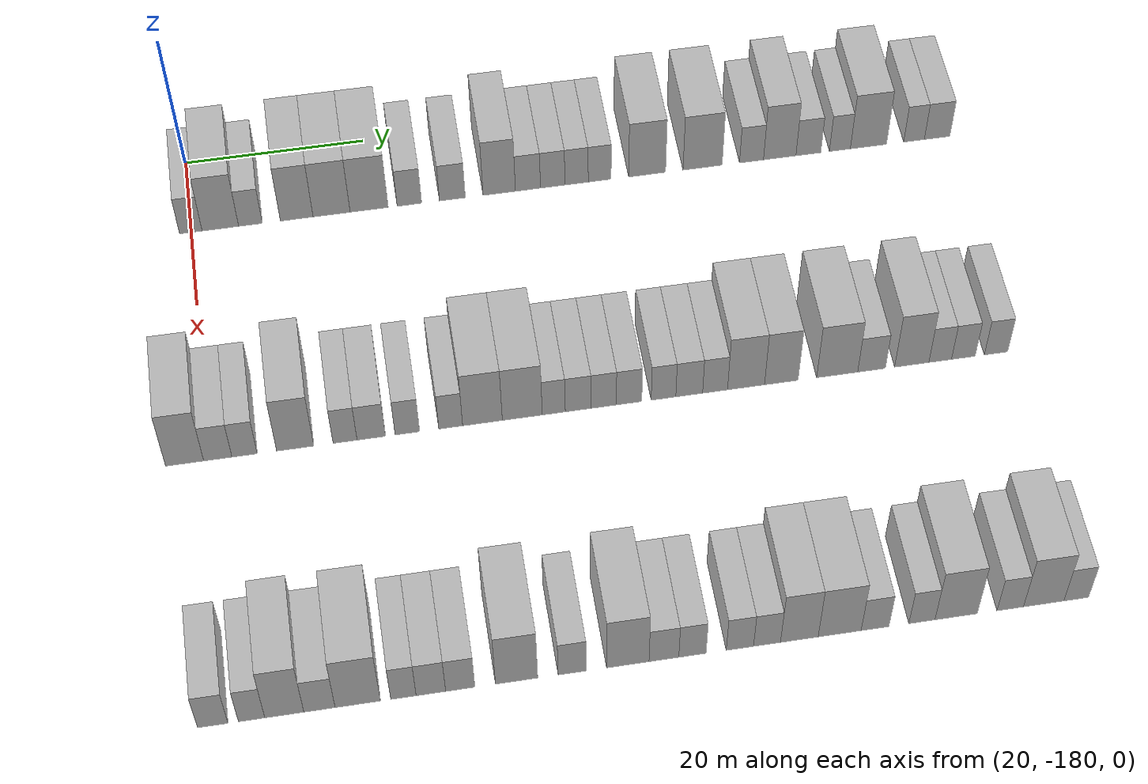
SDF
<sdf version="1.6">
 <world name="default">
  <model name="building_25">
   <static>1</static>
   <pose>25.0000 -180.0024 0 0.000000 0.000000 0.000000</pose>
   <link name="link">
    <pose>0 0 3.00 0 0 0</pose>
    <collision name="collision"><geometry><box><size>10.0000 2.4706 6.0000</size></box></geometry></collision>
    <visual name="visual">
     <cast_shadows>0</cast_shadows>
     <geometry><box><size>10.0000 2.4706 6.0000</size></box></geometry>
     <material>
      <script>
       <uri>model://HANNAS_wall/materials/scripts</uri>
       <uri>model://HANNAS_wall/materials/textures</uri>
       <name>vrc/HANNAS_wall</name>
      </script>
     </material>
    </visual>
   </link>
  </model>
  <model name="building_26">
   <static>1</static>
   <pose>25.0000 -176.7589 0 0.000000 0.000000 0.000000</pose>
   <link name="link">
    <pose>0 0 4.50 0 0 0</pose>
    <collision name="collision"><geometry><box><size>10.0000 4.0163 9.0000</size></box></geometry></collision>
    <visual name="visual">
     <cast_shadows>0</cast_shadows>
     <geometry><box><size>10.0000 4.0163 9.0000</size></box></geometry>
     <material>
      <script>
       <uri>model://HANNAS_wall/materials/scripts</uri>
       <uri>model://HANNAS_wall/materials/textures</uri>
       <name>vrc/HANNAS_wall</name>
      </script>
     </material>
    </visual>
   </link>
  </model>
  <model name="building_27">
   <static>1</static>
   <pose>25.0000 -173.4452 0 0.000000 0.000000 0.000000</pose>
   <link name="link">
    <pose>0 0 3.00 0 0 0</pose>
    <collision name="collision"><geometry><box><size>10.0000 2.6112 6.0000</size></box></geometry></collision>
    <visual name="visual">
     <cast_shadows>0</cast_shadows>
     <geometry><box><size>10.0000 2.6112 6.0000</size></box></geometry>
     <material>
      <script>
       <uri>model://HANNAS_wall/materials/scripts</uri>
       <uri>model://HANNAS_wall/materials/textures</uri>
       <name>vrc/HANNAS_wall</name>
      </script>
     </material>
    </visual>
   </link>
  </model>
  <model name="building_28">
   <static>1</static>
   <pose>25.0000 -168.3313 0 0.000000 0.000000 0.000000</pose>
   <link name="link">
    <pose>0 0 4.50 0 0 0</pose>
    <collision name="collision"><geometry><box><size>10.0000 3.6166 9.0000</size></box></geometry></collision>
    <visual name="visual">
     <cast_shadows>0</cast_shadows>
     <geometry><box><size>10.0000 3.6166 9.0000</size></box></geometry>
     <material>
      <script>
       <uri>model://HANNAS_wall/materials/scripts</uri>
       <uri>model://HANNAS_wall/materials/textures</uri>
       <name>vrc/HANNAS_wall</name>
      </script>
     </material>
    </visual>
   </link>
  </model>
  <model name="building_29">
   <static>1</static>
   <pose>25.0000 -164.4670 0 0.000000 0.000000 0.000000</pose>
   <link name="link">
    <pose>0 0 4.50 0 0 0</pose>
    <collision name="collision"><geometry><box><size>10.0000 4.1120 9.0000</size></box></geometry></collision>
    <visual name="visual">
     <cast_shadows>0</cast_shadows>
     <geometry><box><size>10.0000 4.1120 9.0000</size></box></geometry>
     <material>
      <script>
       <uri>model://HANNAS_wall/materials/scripts</uri>
       <uri>model://HANNAS_wall/materials/textures</uri>
       <name>vrc/HANNAS_wall</name>
      </script>
     </material>
    </visual>
   </link>
  </model>
  <model name="building_30">
   <static>1</static>
   <pose>25.0000 -160.2946 0 0.000000 0.000000 0.000000</pose>
   <link name="link">
    <pose>0 0 4.50 0 0 0</pose>
    <collision name="collision"><geometry><box><size>10.0000 4.2327 9.0000</size></box></geometry></collision>
    <visual name="visual">
     <cast_shadows>0</cast_shadows>
     <geometry><box><size>10.0000 4.2327 9.0000</size></box></geometry>
     <material>
      <script>
       <uri>model://HANNAS_wall/materials/scripts</uri>
       <uri>model://HANNAS_wall/materials/textures</uri>
       <name>vrc/HANNAS_wall</name>
      </script>
     </material>
    </visual>
   </link>
  </model>
  <model name="building_31">
   <static>1</static>
   <pose>25.0000 -155.8138 0 0.000000 0.000000 0.000000</pose>
   <link name="link">
    <pose>0 0 3.00 0 0 0</pose>
    <collision name="collision"><geometry><box><size>10.0000 2.7290 6.0000</size></box></geometry></collision>
    <visual name="visual">
     <cast_shadows>0</cast_shadows>
     <geometry><box><size>10.0000 2.7290 6.0000</size></box></geometry>
     <material>
      <script>
       <uri>model://HANNAS_wall/materials/scripts</uri>
       <uri>model://HANNAS_wall/materials/textures</uri>
       <name>vrc/HANNAS_wall</name>
      </script>
     </material>
    </visual>
   </link>
  </model>
  <model name="building_32">
   <static>1</static>
   <pose>25.0000 -151.0046 0 0.000000 0.000000 0.000000</pose>
   <link name="link">
    <pose>0 0 3.00 0 0 0</pose>
    <collision name="collision"><geometry><box><size>10.0000 2.8893 6.0000</size></box></geometry></collision>
    <visual name="visual">
     <cast_shadows>0</cast_shadows>
     <geometry><box><size>10.0000 2.8893 6.0000</size></box></geometry>
     <material>
      <script>
       <uri>model://HANNAS_wall/materials/scripts</uri>
       <uri>model://HANNAS_wall/materials/textures</uri>
       <name>vrc/HANNAS_wall</name>
      </script>
     </material>
    </visual>
   </link>
  </model>
  <model name="building_33">
   <static>1</static>
   <pose>25.0000 -145.7402 0 0.000000 0.000000 0.000000</pose>
   <link name="link">
    <pose>0 0 4.50 0 0 0</pose>
    <collision name="collision"><geometry><box><size>10.0000 3.6397 9.0000</size></box></geometry></collision>
    <visual name="visual">
     <cast_shadows>0</cast_shadows>
     <geometry><box><size>10.0000 3.6397 9.0000</size></box></geometry>
     <material>
      <script>
       <uri>model://HANNAS_wall/materials/scripts</uri>
       <uri>model://HANNAS_wall/materials/textures</uri>
       <name>vrc/HANNAS_wall</name>
      </script>
     </material>
    </visual>
   </link>
  </model>
  <model name="building_34">
   <static>1</static>
   <pose>25.0000 -142.5089 0 0.000000 0.000000 0.000000</pose>
   <link name="link">
    <pose>0 0 3.00 0 0 0</pose>
    <collision name="collision"><geometry><box><size>10.0000 2.8229 6.0000</size></box></geometry></collision>
    <visual name="visual">
     <cast_shadows>0</cast_shadows>
     <geometry><box><size>10.0000 2.8229 6.0000</size></box></geometry>
     <material>
      <script>
       <uri>model://HANNAS_wall/materials/scripts</uri>
       <uri>model://HANNAS_wall/materials/textures</uri>
       <name>vrc/HANNAS_wall</name>
      </script>
     </material>
    </visual>
   </link>
  </model>
  <model name="building_35">
   <static>1</static>
   <pose>25.0000 -139.7180 0 0.000000 0.000000 0.000000</pose>
   <link name="link">
    <pose>0 0 3.00 0 0 0</pose>
    <collision name="collision"><geometry><box><size>10.0000 2.7589 6.0000</size></box></geometry></collision>
    <visual name="visual">
     <cast_shadows>0</cast_shadows>
     <geometry><box><size>10.0000 2.7589 6.0000</size></box></geometry>
     <material>
      <script>
       <uri>model://HANNAS_wall/materials/scripts</uri>
       <uri>model://HANNAS_wall/materials/textures</uri>
       <name>vrc/HANNAS_wall</name>
      </script>
     </material>
    </visual>
   </link>
  </model>
  <model name="building_36">
   <static>1</static>
   <pose>25.0000 -137.0190 0 0.000000 0.000000 0.000000</pose>
   <link name="link">
    <pose>0 0 3.00 0 0 0</pose>
    <collision name="collision"><geometry><box><size>10.0000 2.6390 6.0000</size></box></geometry></collision>
    <visual name="visual">
     <cast_shadows>0</cast_shadows>
     <geometry><box><size>10.0000 2.6390 6.0000</size></box></geometry>
     <material>
      <script>
       <uri>model://HANNAS_wall/materials/scripts</uri>
       <uri>model://HANNAS_wall/materials/textures</uri>
       <name>vrc/HANNAS_wall</name>
      </script>
     </material>
    </visual>
   </link>
  </model>
  <model name="building_37">
   <static>1</static>
   <pose>25.0000 -134.4072 0 0.000000 0.000000 0.000000</pose>
   <link name="link">
    <pose>0 0 3.00 0 0 0</pose>
    <collision name="collision"><geometry><box><size>10.0000 2.5846 6.0000</size></box></geometry></collision>
    <visual name="visual">
     <cast_shadows>0</cast_shadows>
     <geometry><box><size>10.0000 2.5846 6.0000</size></box></geometry>
     <material>
      <script>
       <uri>model://HANNAS_wall/materials/scripts</uri>
       <uri>model://HANNAS_wall/materials/textures</uri>
       <name>vrc/HANNAS_wall</name>
      </script>
     </material>
    </visual>
   </link>
  </model>
  <model name="building_38">
   <static>1</static>
   <pose>25.0000 -129.0201 0 0.000000 0.000000 0.000000</pose>
   <link name="link">
    <pose>0 0 4.50 0 0 0</pose>
    <collision name="collision"><geometry><box><size>10.0000 4.1896 9.0000</size></box></geometry></collision>
    <visual name="visual">
     <cast_shadows>0</cast_shadows>
     <geometry><box><size>10.0000 4.1896 9.0000</size></box></geometry>
     <material>
      <script>
       <uri>model://HANNAS_wall/materials/scripts</uri>
       <uri>model://HANNAS_wall/materials/textures</uri>
       <name>vrc/HANNAS_wall</name>
      </script>
     </material>
    </visual>
   </link>
  </model>
  <model name="building_39">
   <static>1</static>
   <pose>25.0000 -122.6942 0 0.000000 0.000000 0.000000</pose>
   <link name="link">
    <pose>0 0 4.50 0 0 0</pose>
    <collision name="collision"><geometry><box><size>10.0000 4.4624 9.0000</size></box></geometry></collision>
    <visual name="visual">
     <cast_shadows>0</cast_shadows>
     <geometry><box><size>10.0000 4.4624 9.0000</size></box></geometry>
     <material>
      <script>
       <uri>model://HANNAS_wall/materials/scripts</uri>
       <uri>model://HANNAS_wall/materials/textures</uri>
       <name>vrc/HANNAS_wall</name>
      </script>
     </material>
    </visual>
   </link>
  </model>
  <model name="building_40">
   <static>1</static>
   <pose>25.0000 -117.0867 0 0.000000 0.000000 0.000000</pose>
   <link name="link">
    <pose>0 0 3.00 0 0 0</pose>
    <collision name="collision"><geometry><box><size>10.0000 2.7526 6.0000</size></box></geometry></collision>
    <visual name="visual">
     <cast_shadows>0</cast_shadows>
     <geometry><box><size>10.0000 2.7526 6.0000</size></box></geometry>
     <material>
      <script>
       <uri>model://HANNAS_wall/materials/scripts</uri>
       <uri>model://HANNAS_wall/materials/textures</uri>
       <name>vrc/HANNAS_wall</name>
      </script>
     </material>
    </visual>
   </link>
  </model>
  <model name="building_41">
   <static>1</static>
   <pose>25.0000 -113.8457 0 0.000000 0.000000 0.000000</pose>
   <link name="link">
    <pose>0 0 4.50 0 0 0</pose>
    <collision name="collision"><geometry><box><size>10.0000 3.7295 9.0000</size></box></geometry></collision>
    <visual name="visual">
     <cast_shadows>0</cast_shadows>
     <geometry><box><size>10.0000 3.7295 9.0000</size></box></geometry>
     <material>
      <script>
       <uri>model://HANNAS_wall/materials/scripts</uri>
       <uri>model://HANNAS_wall/materials/textures</uri>
       <name>vrc/HANNAS_wall</name>
      </script>
     </material>
    </visual>
   </link>
  </model>
  <model name="building_42">
   <static>1</static>
   <pose>25.0000 -110.5512 0 0.000000 0.000000 0.000000</pose>
   <link name="link">
    <pose>0 0 3.00 0 0 0</pose>
    <collision name="collision"><geometry><box><size>10.0000 2.8595 6.0000</size></box></geometry></collision>
    <visual name="visual">
     <cast_shadows>0</cast_shadows>
     <geometry><box><size>10.0000 2.8595 6.0000</size></box></geometry>
     <material>
      <script>
       <uri>model://HANNAS_wall/materials/scripts</uri>
       <uri>model://HANNAS_wall/materials/textures</uri>
       <name>vrc/HANNAS_wall</name>
      </script>
     </material>
    </visual>
   </link>
  </model>
  <model name="building_43">
   <static>1</static>
   <pose>25.0000 -106.9096 0 0.000000 0.000000 0.000000</pose>
   <link name="link">
    <pose>0 0 3.00 0 0 0</pose>
    <collision name="collision"><geometry><box><size>10.0000 2.4235 6.0000</size></box></geometry></collision>
    <visual name="visual">
     <cast_shadows>0</cast_shadows>
     <geometry><box><size>10.0000 2.4235 6.0000</size></box></geometry>
     <material>
      <script>
       <uri>model://HANNAS_wall/materials/scripts</uri>
       <uri>model://HANNAS_wall/materials/textures</uri>
       <name>vrc/HANNAS_wall</name>
      </script>
     </material>
    </visual>
   </link>
  </model>
  <model name="building_44">
   <static>1</static>
   <pose>25.0000 -103.6052 0 0.000000 0.000000 0.000000</pose>
   <link name="link">
    <pose>0 0 4.50 0 0 0</pose>
    <collision name="collision"><geometry><box><size>10.0000 4.1853 9.0000</size></box></geometry></collision>
    <visual name="visual">
     <cast_shadows>0</cast_shadows>
     <geometry><box><size>10.0000 4.1853 9.0000</size></box></geometry>
     <material>
      <script>
       <uri>model://HANNAS_wall/materials/scripts</uri>
       <uri>model://HANNAS_wall/materials/textures</uri>
       <name>vrc/HANNAS_wall</name>
      </script>
     </material>
    </visual>
   </link>
  </model>
  <model name="building_45">
   <static>1</static>
   <pose>25.0000 -98.3105 0 0.000000 0.000000 0.000000</pose>
   <link name="link">
    <pose>0 0 3.00 0 0 0</pose>
    <collision name="collision"><geometry><box><size>10.0000 2.4042 6.0000</size></box></geometry></collision>
    <visual name="visual">
     <cast_shadows>0</cast_shadows>
     <geometry><box><size>10.0000 2.4042 6.0000</size></box></geometry>
     <material>
      <script>
       <uri>model://HANNAS_wall/materials/scripts</uri>
       <uri>model://HANNAS_wall/materials/textures</uri>
       <name>vrc/HANNAS_wall</name>
      </script>
     </material>
    </visual>
   </link>
  </model>
  <model name="building_46">
   <static>1</static>
   <pose>25.0000 -95.6252 0 0.000000 0.000000 0.000000</pose>
   <link name="link">
    <pose>0 0 3.00 0 0 0</pose>
    <collision name="collision"><geometry><box><size>10.0000 2.9663 6.0000</size></box></geometry></collision>
    <visual name="visual">
     <cast_shadows>0</cast_shadows>
     <geometry><box><size>10.0000 2.9663 6.0000</size></box></geometry>
     <material>
      <script>
       <uri>model://HANNAS_wall/materials/scripts</uri>
       <uri>model://HANNAS_wall/materials/textures</uri>
       <name>vrc/HANNAS_wall</name>
      </script>
     </material>
    </visual>
   </link>
  </model>
  <model name="building_163">
   <static>1</static>
   <pose>55.0000 -182.4453 0 0.000000 0.000000 0.000000</pose>
   <link name="link">
    <pose>0 0 4.50 0 0 0</pose>
    <collision name="collision"><geometry><box><size>10.0000 3.8979 9.0000</size></box></geometry></collision>
    <visual name="visual">
     <cast_shadows>0</cast_shadows>
     <geometry><box><size>10.0000 3.8979 9.0000</size></box></geometry>
     <material>
      <script>
       <uri>model://HANNAS_wall/materials/scripts</uri>
       <uri>model://HANNAS_wall/materials/textures</uri>
       <name>vrc/HANNAS_wall</name>
      </script>
     </material>
    </visual>
   </link>
  </model>
  <model name="building_164">
   <static>1</static>
   <pose>55.0000 -179.0479 0 0.000000 0.000000 0.000000</pose>
   <link name="link">
    <pose>0 0 3.00 0 0 0</pose>
    <collision name="collision"><geometry><box><size>10.0000 2.8968 6.0000</size></box></geometry></collision>
    <visual name="visual">
     <cast_shadows>0</cast_shadows>
     <geometry><box><size>10.0000 2.8968 6.0000</size></box></geometry>
     <material>
      <script>
       <uri>model://HANNAS_wall/materials/scripts</uri>
       <uri>model://HANNAS_wall/materials/textures</uri>
       <name>vrc/HANNAS_wall</name>
      </script>
     </material>
    </visual>
   </link>
  </model>
  <model name="building_165">
   <static>1</static>
   <pose>55.0000 -176.2980 0 0.000000 0.000000 0.000000</pose>
   <link name="link">
    <pose>0 0 3.00 0 0 0</pose>
    <collision name="collision"><geometry><box><size>10.0000 2.6032 6.0000</size></box></geometry></collision>
    <visual name="visual">
     <cast_shadows>0</cast_shadows>
     <geometry><box><size>10.0000 2.6032 6.0000</size></box></geometry>
     <material>
      <script>
       <uri>model://HANNAS_wall/materials/scripts</uri>
       <uri>model://HANNAS_wall/materials/textures</uri>
       <name>vrc/HANNAS_wall</name>
      </script>
     </material>
    </visual>
   </link>
  </model>
  <model name="building_166">
   <static>1</static>
   <pose>55.0000 -171.0802 0 0.000000 0.000000 0.000000</pose>
   <link name="link">
    <pose>0 0 4.50 0 0 0</pose>
    <collision name="collision"><geometry><box><size>10.0000 3.8323 9.0000</size></box></geometry></collision>
    <visual name="visual">
     <cast_shadows>0</cast_shadows>
     <geometry><box><size>10.0000 3.8323 9.0000</size></box></geometry>
     <material>
      <script>
       <uri>model://HANNAS_wall/materials/scripts</uri>
       <uri>model://HANNAS_wall/materials/textures</uri>
       <name>vrc/HANNAS_wall</name>
      </script>
     </material>
    </visual>
   </link>
  </model>
  <model name="building_167">
   <static>1</static>
   <pose>55.0000 -165.9224 0 0.000000 0.000000 0.000000</pose>
   <link name="link">
    <pose>0 0 3.00 0 0 0</pose>
    <collision name="collision"><geometry><box><size>10.0000 2.4832 6.0000</size></box></geometry></collision>
    <visual name="visual">
     <cast_shadows>0</cast_shadows>
     <geometry><box><size>10.0000 2.4832 6.0000</size></box></geometry>
     <material>
      <script>
       <uri>model://HANNAS_wall/materials/scripts</uri>
       <uri>model://HANNAS_wall/materials/textures</uri>
       <name>vrc/HANNAS_wall</name>
      </script>
     </material>
    </visual>
   </link>
  </model>
  <model name="building_168">
   <static>1</static>
   <pose>55.0000 -163.2024 0 0.000000 0.000000 0.000000</pose>
   <link name="link">
    <pose>0 0 3.00 0 0 0</pose>
    <collision name="collision"><geometry><box><size>10.0000 2.9569 6.0000</size></box></geometry></collision>
    <visual name="visual">
     <cast_shadows>0</cast_shadows>
     <geometry><box><size>10.0000 2.9569 6.0000</size></box></geometry>
     <material>
      <script>
       <uri>model://HANNAS_wall/materials/scripts</uri>
       <uri>model://HANNAS_wall/materials/textures</uri>
       <name>vrc/HANNAS_wall</name>
      </script>
     </material>
    </visual>
   </link>
  </model>
  <model name="building_169">
   <static>1</static>
   <pose>55.0000 -159.4492 0 0.000000 0.000000 0.000000</pose>
   <link name="link">
    <pose>0 0 3.00 0 0 0</pose>
    <collision name="collision"><geometry><box><size>10.0000 2.5495 6.0000</size></box></geometry></collision>
    <visual name="visual">
     <cast_shadows>0</cast_shadows>
     <geometry><box><size>10.0000 2.5495 6.0000</size></box></geometry>
     <material>
      <script>
       <uri>model://HANNAS_wall/materials/scripts</uri>
       <uri>model://HANNAS_wall/materials/textures</uri>
       <name>vrc/HANNAS_wall</name>
      </script>
     </material>
    </visual>
   </link>
  </model>
  <model name="building_170">
   <static>1</static>
   <pose>55.0000 -154.9286 0 0.000000 0.000000 0.000000</pose>
   <link name="link">
    <pose>0 0 3.00 0 0 0</pose>
    <collision name="collision"><geometry><box><size>10.0000 2.4918 6.0000</size></box></geometry></collision>
    <visual name="visual">
     <cast_shadows>0</cast_shadows>
     <geometry><box><size>10.0000 2.4918 6.0000</size></box></geometry>
     <material>
      <script>
       <uri>model://HANNAS_wall/materials/scripts</uri>
       <uri>model://HANNAS_wall/materials/textures</uri>
       <name>vrc/HANNAS_wall</name>
      </script>
     </material>
    </visual>
   </link>
  </model>
  <model name="building_171">
   <static>1</static>
   <pose>55.0000 -151.6061 0 0.000000 0.000000 0.000000</pose>
   <link name="link">
    <pose>0 0 4.50 0 0 0</pose>
    <collision name="collision"><geometry><box><size>10.0000 4.1533 9.0000</size></box></geometry></collision>
    <visual name="visual">
     <cast_shadows>0</cast_shadows>
     <geometry><box><size>10.0000 4.1533 9.0000</size></box></geometry>
     <material>
      <script>
       <uri>model://HANNAS_wall/materials/scripts</uri>
       <uri>model://HANNAS_wall/materials/textures</uri>
       <name>vrc/HANNAS_wall</name>
      </script>
     </material>
    </visual>
   </link>
  </model>
  <model name="building_172">
   <static>1</static>
   <pose>55.0000 -147.4324 0 0.000000 0.000000 0.000000</pose>
   <link name="link">
    <pose>0 0 4.50 0 0 0</pose>
    <collision name="collision"><geometry><box><size>10.0000 4.1940 9.0000</size></box></geometry></collision>
    <visual name="visual">
     <cast_shadows>0</cast_shadows>
     <geometry><box><size>10.0000 4.1940 9.0000</size></box></geometry>
     <material>
      <script>
       <uri>model://HANNAS_wall/materials/scripts</uri>
       <uri>model://HANNAS_wall/materials/textures</uri>
       <name>vrc/HANNAS_wall</name>
      </script>
     </material>
    </visual>
   </link>
  </model>
  <model name="building_173">
   <static>1</static>
   <pose>55.0000 -144.1195 0 0.000000 0.000000 0.000000</pose>
   <link name="link">
    <pose>0 0 3.00 0 0 0</pose>
    <collision name="collision"><geometry><box><size>10.0000 2.4318 6.0000</size></box></geometry></collision>
    <visual name="visual">
     <cast_shadows>0</cast_shadows>
     <geometry><box><size>10.0000 2.4318 6.0000</size></box></geometry>
     <material>
      <script>
       <uri>model://HANNAS_wall/materials/scripts</uri>
       <uri>model://HANNAS_wall/materials/textures</uri>
       <name>vrc/HANNAS_wall</name>
      </script>
     </material>
    </visual>
   </link>
  </model>
  <model name="building_174">
   <static>1</static>
   <pose>55.0000 -141.5401 0 0.000000 0.000000 0.000000</pose>
   <link name="link">
    <pose>0 0 3.00 0 0 0</pose>
    <collision name="collision"><geometry><box><size>10.0000 2.7270 6.0000</size></box></geometry></collision>
    <visual name="visual">
     <cast_shadows>0</cast_shadows>
     <geometry><box><size>10.0000 2.7270 6.0000</size></box></geometry>
     <material>
      <script>
       <uri>model://HANNAS_wall/materials/scripts</uri>
       <uri>model://HANNAS_wall/materials/textures</uri>
       <name>vrc/HANNAS_wall</name>
      </script>
     </material>
    </visual>
   </link>
  </model>
  <model name="building_175">
   <static>1</static>
   <pose>55.0000 -138.8401 0 0.000000 0.000000 0.000000</pose>
   <link name="link">
    <pose>0 0 3.00 0 0 0</pose>
    <collision name="collision"><geometry><box><size>10.0000 2.6731 6.0000</size></box></geometry></collision>
    <visual name="visual">
     <cast_shadows>0</cast_shadows>
     <geometry><box><size>10.0000 2.6731 6.0000</size></box></geometry>
     <material>
      <script>
       <uri>model://HANNAS_wall/materials/scripts</uri>
       <uri>model://HANNAS_wall/materials/textures</uri>
       <name>vrc/HANNAS_wall</name>
      </script>
     </material>
    </visual>
   </link>
  </model>
  <model name="building_176">
   <static>1</static>
   <pose>55.0000 -136.1611 0 0.000000 0.000000 0.000000</pose>
   <link name="link">
    <pose>0 0 3.00 0 0 0</pose>
    <collision name="collision"><geometry><box><size>10.0000 2.6848 6.0000</size></box></geometry></collision>
    <visual name="visual">
     <cast_shadows>0</cast_shadows>
     <geometry><box><size>10.0000 2.6848 6.0000</size></box></geometry>
     <material>
      <script>
       <uri>model://HANNAS_wall/materials/scripts</uri>
       <uri>model://HANNAS_wall/materials/textures</uri>
       <name>vrc/HANNAS_wall</name>
      </script>
     </material>
    </visual>
   </link>
  </model>
  <model name="building_177">
   <static>1</static>
   <pose>55.0000 -132.5093 0 0.000000 0.000000 0.000000</pose>
   <link name="link">
    <pose>0 0 3.00 0 0 0</pose>
    <collision name="collision"><geometry><box><size>10.0000 2.6189 6.0000</size></box></geometry></collision>
    <visual name="visual">
     <cast_shadows>0</cast_shadows>
     <geometry><box><size>10.0000 2.6189 6.0000</size></box></geometry>
     <material>
      <script>
       <uri>model://HANNAS_wall/materials/scripts</uri>
       <uri>model://HANNAS_wall/materials/textures</uri>
       <name>vrc/HANNAS_wall</name>
      </script>
     </material>
    </visual>
   </link>
  </model>
  <model name="building_178">
   <static>1</static>
   <pose>55.0000 -129.7719 0 0.000000 0.000000 0.000000</pose>
   <link name="link">
    <pose>0 0 3.00 0 0 0</pose>
    <collision name="collision"><geometry><box><size>10.0000 2.8557 6.0000</size></box></geometry></collision>
    <visual name="visual">
     <cast_shadows>0</cast_shadows>
     <geometry><box><size>10.0000 2.8557 6.0000</size></box></geometry>
     <material>
      <script>
       <uri>model://HANNAS_wall/materials/scripts</uri>
       <uri>model://HANNAS_wall/materials/textures</uri>
       <name>vrc/HANNAS_wall</name>
      </script>
     </material>
    </visual>
   </link>
  </model>
  <model name="building_179">
   <static>1</static>
   <pose>55.0000 -127.0164 0 0.000000 0.000000 0.000000</pose>
   <link name="link">
    <pose>0 0 3.00 0 0 0</pose>
    <collision name="collision"><geometry><box><size>10.0000 2.6552 6.0000</size></box></geometry></collision>
    <visual name="visual">
     <cast_shadows>0</cast_shadows>
     <geometry><box><size>10.0000 2.6552 6.0000</size></box></geometry>
     <material>
      <script>
       <uri>model://HANNAS_wall/materials/scripts</uri>
       <uri>model://HANNAS_wall/materials/textures</uri>
       <name>vrc/HANNAS_wall</name>
      </script>
     </material>
    </visual>
   </link>
  </model>
  <model name="building_180">
   <static>1</static>
   <pose>55.0000 -123.7089 0 0.000000 0.000000 0.000000</pose>
   <link name="link">
    <pose>0 0 4.50 0 0 0</pose>
    <collision name="collision"><geometry><box><size>10.0000 3.9598 9.0000</size></box></geometry></collision>
    <visual name="visual">
     <cast_shadows>0</cast_shadows>
     <geometry><box><size>10.0000 3.9598 9.0000</size></box></geometry>
     <material>
      <script>
       <uri>model://HANNAS_wall/materials/scripts</uri>
       <uri>model://HANNAS_wall/materials/textures</uri>
       <name>vrc/HANNAS_wall</name>
      </script>
     </material>
    </visual>
   </link>
  </model>
  <model name="building_181">
   <static>1</static>
   <pose>55.0000 -119.9283 0 0.000000 0.000000 0.000000</pose>
   <link name="link">
    <pose>0 0 4.50 0 0 0</pose>
    <collision name="collision"><geometry><box><size>10.0000 3.6014 9.0000</size></box></geometry></collision>
    <visual name="visual">
     <cast_shadows>0</cast_shadows>
     <geometry><box><size>10.0000 3.6014 9.0000</size></box></geometry>
     <material>
      <script>
       <uri>model://HANNAS_wall/materials/scripts</uri>
       <uri>model://HANNAS_wall/materials/textures</uri>
       <name>vrc/HANNAS_wall</name>
      </script>
     </material>
    </visual>
   </link>
  </model>
  <model name="building_182">
   <static>1</static>
   <pose>55.0000 -113.9165 0 0.000000 0.000000 0.000000</pose>
   <link name="link">
    <pose>0 0 4.50 0 0 0</pose>
    <collision name="collision"><geometry><box><size>10.0000 4.4222 9.0000</size></box></geometry></collision>
    <visual name="visual">
     <cast_shadows>0</cast_shadows>
     <geometry><box><size>10.0000 4.4222 9.0000</size></box></geometry>
     <material>
      <script>
       <uri>model://HANNAS_wall/materials/scripts</uri>
       <uri>model://HANNAS_wall/materials/textures</uri>
       <name>vrc/HANNAS_wall</name>
      </script>
     </material>
    </visual>
   </link>
  </model>
  <model name="building_183">
   <static>1</static>
   <pose>55.0000 -110.2074 0 0.000000 0.000000 0.000000</pose>
   <link name="link">
    <pose>0 0 3.00 0 0 0</pose>
    <collision name="collision"><geometry><box><size>10.0000 2.9961 6.0000</size></box></geometry></collision>
    <visual name="visual">
     <cast_shadows>0</cast_shadows>
     <geometry><box><size>10.0000 2.9961 6.0000</size></box></geometry>
     <material>
      <script>
       <uri>model://HANNAS_wall/materials/scripts</uri>
       <uri>model://HANNAS_wall/materials/textures</uri>
       <name>vrc/HANNAS_wall</name>
      </script>
     </material>
    </visual>
   </link>
  </model>
  <model name="building_184">
   <static>1</static>
   <pose>55.0000 -105.8546 0 0.000000 0.000000 0.000000</pose>
   <link name="link">
    <pose>0 0 4.50 0 0 0</pose>
    <collision name="collision"><geometry><box><size>10.0000 3.7094 9.0000</size></box></geometry></collision>
    <visual name="visual">
     <cast_shadows>0</cast_shadows>
     <geometry><box><size>10.0000 3.7094 9.0000</size></box></geometry>
     <material>
      <script>
       <uri>model://HANNAS_wall/materials/scripts</uri>
       <uri>model://HANNAS_wall/materials/textures</uri>
       <name>vrc/HANNAS_wall</name>
      </script>
     </material>
    </visual>
   </link>
  </model>
  <model name="building_185">
   <static>1</static>
   <pose>55.0000 -102.7662 0 0.000000 0.000000 0.000000</pose>
   <link name="link">
    <pose>0 0 3.00 0 0 0</pose>
    <collision name="collision"><geometry><box><size>10.0000 2.4674 6.0000</size></box></geometry></collision>
    <visual name="visual">
     <cast_shadows>0</cast_shadows>
     <geometry><box><size>10.0000 2.4674 6.0000</size></box></geometry>
     <material>
      <script>
       <uri>model://HANNAS_wall/materials/scripts</uri>
       <uri>model://HANNAS_wall/materials/textures</uri>
       <name>vrc/HANNAS_wall</name>
      </script>
     </material>
    </visual>
   </link>
  </model>
  <model name="building_186">
   <static>1</static>
   <pose>55.0000 -100.2447 0 0.000000 0.000000 0.000000</pose>
   <link name="link">
    <pose>0 0 3.00 0 0 0</pose>
    <collision name="collision"><geometry><box><size>10.0000 2.5758 6.0000</size></box></geometry></collision>
    <visual name="visual">
     <cast_shadows>0</cast_shadows>
     <geometry><box><size>10.0000 2.5758 6.0000</size></box></geometry>
     <material>
      <script>
       <uri>model://HANNAS_wall/materials/scripts</uri>
       <uri>model://HANNAS_wall/materials/textures</uri>
       <name>vrc/HANNAS_wall</name>
      </script>
     </material>
    </visual>
   </link>
  </model>
  <model name="building_187">
   <static>1</static>
   <pose>55.0000 -96.6782 0 0.000000 0.000000 0.000000</pose>
   <link name="link">
    <pose>0 0 3.00 0 0 0</pose>
    <collision name="collision"><geometry><box><size>10.0000 2.5571 6.0000</size></box></geometry></collision>
    <visual name="visual">
     <cast_shadows>0</cast_shadows>
     <geometry><box><size>10.0000 2.5571 6.0000</size></box></geometry>
     <material>
      <script>
       <uri>model://HANNAS_wall/materials/scripts</uri>
       <uri>model://HANNAS_wall/materials/textures</uri>
       <name>vrc/HANNAS_wall</name>
      </script>
     </material>
    </visual>
   </link>
  </model>
  <model name="building_304">
   <static>1</static>
   <pose>85.0000 -181.5337 0 0.000000 0.000000 0.000000</pose>
   <link name="link">
    <pose>0 0 3.00 0 0 0</pose>
    <collision name="collision"><geometry><box><size>10.0000 2.8933 6.0000</size></box></geometry></collision>
    <visual name="visual">
     <cast_shadows>0</cast_shadows>
     <geometry><box><size>10.0000 2.8933 6.0000</size></box></geometry>
     <material>
      <script>
       <uri>model://HANNAS_wall/materials/scripts</uri>
       <uri>model://HANNAS_wall/materials/textures</uri>
       <name>vrc/HANNAS_wall</name>
      </script>
     </material>
    </visual>
   </link>
  </model>
  <model name="building_305">
   <static>1</static>
   <pose>85.0000 -177.8297 0 0.000000 0.000000 0.000000</pose>
   <link name="link">
    <pose>0 0 3.00 0 0 0</pose>
    <collision name="collision"><geometry><box><size>10.0000 2.5146 6.0000</size></box></geometry></collision>
    <visual name="visual">
     <cast_shadows>0</cast_shadows>
     <geometry><box><size>10.0000 2.5146 6.0000</size></box></geometry>
     <material>
      <script>
       <uri>model://HANNAS_wall/materials/scripts</uri>
       <uri>model://HANNAS_wall/materials/textures</uri>
       <name>vrc/HANNAS_wall</name>
      </script>
     </material>
    </visual>
   </link>
  </model>
  <model name="building_306">
   <static>1</static>
   <pose>85.0000 -174.7025 0 0.000000 0.000000 0.000000</pose>
   <link name="link">
    <pose>0 0 4.50 0 0 0</pose>
    <collision name="collision"><geometry><box><size>10.0000 3.7398 9.0000</size></box></geometry></collision>
    <visual name="visual">
     <cast_shadows>0</cast_shadows>
     <geometry><box><size>10.0000 3.7398 9.0000</size></box></geometry>
     <material>
      <script>
       <uri>model://HANNAS_wall/materials/scripts</uri>
       <uri>model://HANNAS_wall/materials/textures</uri>
       <name>vrc/HANNAS_wall</name>
      </script>
     </material>
    </visual>
   </link>
  </model>
  <model name="building_307">
   <static>1</static>
   <pose>85.0000 -171.3330 0 0.000000 0.000000 0.000000</pose>
   <link name="link">
    <pose>0 0 3.00 0 0 0</pose>
    <collision name="collision"><geometry><box><size>10.0000 2.9992 6.0000</size></box></geometry></collision>
    <visual name="visual">
     <cast_shadows>0</cast_shadows>
     <geometry><box><size>10.0000 2.9992 6.0000</size></box></geometry>
     <material>
      <script>
       <uri>model://HANNAS_wall/materials/scripts</uri>
       <uri>model://HANNAS_wall/materials/textures</uri>
       <name>vrc/HANNAS_wall</name>
      </script>
     </material>
    </visual>
   </link>
  </model>
  <model name="building_308">
   <static>1</static>
   <pose>85.0000 -167.6498 0 0.000000 0.000000 0.000000</pose>
   <link name="link">
    <pose>0 0 4.50 0 0 0</pose>
    <collision name="collision"><geometry><box><size>10.0000 4.3672 9.0000</size></box></geometry></collision>
    <visual name="visual">
     <cast_shadows>0</cast_shadows>
     <geometry><box><size>10.0000 4.3672 9.0000</size></box></geometry>
     <material>
      <script>
       <uri>model://HANNAS_wall/materials/scripts</uri>
       <uri>model://HANNAS_wall/materials/textures</uri>
       <name>vrc/HANNAS_wall</name>
      </script>
     </material>
    </visual>
   </link>
  </model>
  <model name="building_309">
   <static>1</static>
   <pose>85.0000 -163.2433 0 0.000000 0.000000 0.000000</pose>
   <link name="link">
    <pose>0 0 3.00 0 0 0</pose>
    <collision name="collision"><geometry><box><size>10.0000 2.4458 6.0000</size></box></geometry></collision>
    <visual name="visual">
     <cast_shadows>0</cast_shadows>
     <geometry><box><size>10.0000 2.4458 6.0000</size></box></geometry>
     <material>
      <script>
       <uri>model://HANNAS_wall/materials/scripts</uri>
       <uri>model://HANNAS_wall/materials/textures</uri>
       <name>vrc/HANNAS_wall</name>
      </script>
     </material>
    </visual>
   </link>
  </model>
  <model name="building_310">
   <static>1</static>
   <pose>85.0000 -160.5916 0 0.000000 0.000000 0.000000</pose>
   <link name="link">
    <pose>0 0 3.00 0 0 0</pose>
    <collision name="collision"><geometry><box><size>10.0000 2.8578 6.0000</size></box></geometry></collision>
    <visual name="visual">
     <cast_shadows>0</cast_shadows>
     <geometry><box><size>10.0000 2.8578 6.0000</size></box></geometry>
     <material>
      <script>
       <uri>model://HANNAS_wall/materials/scripts</uri>
       <uri>model://HANNAS_wall/materials/textures</uri>
       <name>vrc/HANNAS_wall</name>
      </script>
     </material>
    </visual>
   </link>
  </model>
  <model name="building_311">
   <static>1</static>
   <pose>85.0000 -157.7450 0 0.000000 0.000000 0.000000</pose>
   <link name="link">
    <pose>0 0 3.00 0 0 0</pose>
    <collision name="collision"><geometry><box><size>10.0000 2.8354 6.0000</size></box></geometry></collision>
    <visual name="visual">
     <cast_shadows>0</cast_shadows>
     <geometry><box><size>10.0000 2.8354 6.0000</size></box></geometry>
     <material>
      <script>
       <uri>model://HANNAS_wall/materials/scripts</uri>
       <uri>model://HANNAS_wall/materials/textures</uri>
       <name>vrc/HANNAS_wall</name>
      </script>
     </material>
    </visual>
   </link>
  </model>
  <model name="building_312">
   <static>1</static>
   <pose>85.0000 -152.2671 0 0.000000 0.000000 0.000000</pose>
   <link name="link">
    <pose>0 0 4.50 0 0 0</pose>
    <collision name="collision"><geometry><box><size>10.0000 4.1204 9.0000</size></box></geometry></collision>
    <visual name="visual">
     <cast_shadows>0</cast_shadows>
     <geometry><box><size>10.0000 4.1204 9.0000</size></box></geometry>
     <material>
      <script>
       <uri>model://HANNAS_wall/materials/scripts</uri>
       <uri>model://HANNAS_wall/materials/textures</uri>
       <name>vrc/HANNAS_wall</name>
      </script>
     </material>
    </visual>
   </link>
  </model>
  <model name="building_313">
   <static>1</static>
   <pose>85.0000 -146.8329 0 0.000000 0.000000 0.000000</pose>
   <link name="link">
    <pose>0 0 3.00 0 0 0</pose>
    <collision name="collision"><geometry><box><size>10.0000 2.7481 6.0000</size></box></geometry></collision>
    <visual name="visual">
     <cast_shadows>0</cast_shadows>
     <geometry><box><size>10.0000 2.7481 6.0000</size></box></geometry>
     <material>
      <script>
       <uri>model://HANNAS_wall/materials/scripts</uri>
       <uri>model://HANNAS_wall/materials/textures</uri>
       <name>vrc/HANNAS_wall</name>
      </script>
     </material>
    </visual>
   </link>
  </model>
  <model name="building_314">
   <static>1</static>
   <pose>85.0000 -141.3733 0 0.000000 0.000000 0.000000</pose>
   <link name="link">
    <pose>0 0 4.50 0 0 0</pose>
    <collision name="collision"><geometry><box><size>10.0000 4.1712 9.0000</size></box></geometry></collision>
    <visual name="visual">
     <cast_shadows>0</cast_shadows>
     <geometry><box><size>10.0000 4.1712 9.0000</size></box></geometry>
     <material>
      <script>
       <uri>model://HANNAS_wall/materials/scripts</uri>
       <uri>model://HANNAS_wall/materials/textures</uri>
       <name>vrc/HANNAS_wall</name>
      </script>
     </material>
    </visual>
   </link>
  </model>
  <model name="building_315">
   <static>1</static>
   <pose>85.0000 -137.8201 0 0.000000 0.000000 0.000000</pose>
   <link name="link">
    <pose>0 0 3.00 0 0 0</pose>
    <collision name="collision"><geometry><box><size>10.0000 2.9351 6.0000</size></box></geometry></collision>
    <visual name="visual">
     <cast_shadows>0</cast_shadows>
     <geometry><box><size>10.0000 2.9351 6.0000</size></box></geometry>
     <material>
      <script>
       <uri>model://HANNAS_wall/materials/scripts</uri>
       <uri>model://HANNAS_wall/materials/textures</uri>
       <name>vrc/HANNAS_wall</name>
      </script>
     </material>
    </visual>
   </link>
  </model>
  <model name="building_316">
   <static>1</static>
   <pose>85.0000 -135.0067 0 0.000000 0.000000 0.000000</pose>
   <link name="link">
    <pose>0 0 3.00 0 0 0</pose>
    <collision name="collision"><geometry><box><size>10.0000 2.6917 6.0000</size></box></geometry></collision>
    <visual name="visual">
     <cast_shadows>0</cast_shadows>
     <geometry><box><size>10.0000 2.6917 6.0000</size></box></geometry>
     <material>
      <script>
       <uri>model://HANNAS_wall/materials/scripts</uri>
       <uri>model://HANNAS_wall/materials/textures</uri>
       <name>vrc/HANNAS_wall</name>
      </script>
     </material>
    </visual>
   </link>
  </model>
  <model name="building_317">
   <static>1</static>
   <pose>85.0000 -130.3048 0 0.000000 0.000000 0.000000</pose>
   <link name="link">
    <pose>0 0 3.00 0 0 0</pose>
    <collision name="collision"><geometry><box><size>10.0000 2.7119 6.0000</size></box></geometry></collision>
    <visual name="visual">
     <cast_shadows>0</cast_shadows>
     <geometry><box><size>10.0000 2.7119 6.0000</size></box></geometry>
     <material>
      <script>
       <uri>model://HANNAS_wall/materials/scripts</uri>
       <uri>model://HANNAS_wall/materials/textures</uri>
       <name>vrc/HANNAS_wall</name>
      </script>
     </material>
    </visual>
   </link>
  </model>
  <model name="building_318">
   <static>1</static>
   <pose>85.0000 -127.6083 0 0.000000 0.000000 0.000000</pose>
   <link name="link">
    <pose>0 0 3.00 0 0 0</pose>
    <collision name="collision"><geometry><box><size>10.0000 2.6811 6.0000</size></box></geometry></collision>
    <visual name="visual">
     <cast_shadows>0</cast_shadows>
     <geometry><box><size>10.0000 2.6811 6.0000</size></box></geometry>
     <material>
      <script>
       <uri>model://HANNAS_wall/materials/scripts</uri>
       <uri>model://HANNAS_wall/materials/textures</uri>
       <name>vrc/HANNAS_wall</name>
      </script>
     </material>
    </visual>
   </link>
  </model>
  <model name="building_319">
   <static>1</static>
   <pose>85.0000 -124.3882 0 0.000000 0.000000 0.000000</pose>
   <link name="link">
    <pose>0 0 4.50 0 0 0</pose>
    <collision name="collision"><geometry><box><size>10.0000 3.7593 9.0000</size></box></geometry></collision>
    <visual name="visual">
     <cast_shadows>0</cast_shadows>
     <geometry><box><size>10.0000 3.7593 9.0000</size></box></geometry>
     <material>
      <script>
       <uri>model://HANNAS_wall/materials/scripts</uri>
       <uri>model://HANNAS_wall/materials/textures</uri>
       <name>vrc/HANNAS_wall</name>
      </script>
     </material>
    </visual>
   </link>
  </model>
  <model name="building_320">
   <static>1</static>
   <pose>85.0000 -120.3580 0 0.000000 0.000000 0.000000</pose>
   <link name="link">
    <pose>0 0 4.50 0 0 0</pose>
    <collision name="collision"><geometry><box><size>10.0000 4.3010 9.0000</size></box></geometry></collision>
    <visual name="visual">
     <cast_shadows>0</cast_shadows>
     <geometry><box><size>10.0000 4.3010 9.0000</size></box></geometry>
     <material>
      <script>
       <uri>model://HANNAS_wall/materials/scripts</uri>
       <uri>model://HANNAS_wall/materials/textures</uri>
       <name>vrc/HANNAS_wall</name>
      </script>
     </material>
    </visual>
   </link>
  </model>
  <model name="building_321">
   <static>1</static>
   <pose>85.0000 -116.8121 0 0.000000 0.000000 0.000000</pose>
   <link name="link">
    <pose>0 0 3.00 0 0 0</pose>
    <collision name="collision"><geometry><box><size>10.0000 2.7908 6.0000</size></box></geometry></collision>
    <visual name="visual">
     <cast_shadows>0</cast_shadows>
     <geometry><box><size>10.0000 2.7908 6.0000</size></box></geometry>
     <material>
      <script>
       <uri>model://HANNAS_wall/materials/scripts</uri>
       <uri>model://HANNAS_wall/materials/textures</uri>
       <name>vrc/HANNAS_wall</name>
      </script>
     </material>
    </visual>
   </link>
  </model>
  <model name="building_322">
   <static>1</static>
   <pose>85.0000 -112.1042 0 0.000000 0.000000 0.000000</pose>
   <link name="link">
    <pose>0 0 3.00 0 0 0</pose>
    <collision name="collision"><geometry><box><size>10.0000 2.6251 6.0000</size></box></geometry></collision>
    <visual name="visual">
     <cast_shadows>0</cast_shadows>
     <geometry><box><size>10.0000 2.6251 6.0000</size></box></geometry>
     <material>
      <script>
       <uri>model://HANNAS_wall/materials/scripts</uri>
       <uri>model://HANNAS_wall/materials/textures</uri>
       <name>vrc/HANNAS_wall</name>
      </script>
     </material>
    </visual>
   </link>
  </model>
  <model name="building_323">
   <static>1</static>
   <pose>85.0000 -108.6530 0 0.000000 0.000000 0.000000</pose>
   <link name="link">
    <pose>0 0 4.50 0 0 0</pose>
    <collision name="collision"><geometry><box><size>10.0000 4.2773 9.0000</size></box></geometry></collision>
    <visual name="visual">
     <cast_shadows>0</cast_shadows>
     <geometry><box><size>10.0000 4.2773 9.0000</size></box></geometry>
     <material>
      <script>
       <uri>model://HANNAS_wall/materials/scripts</uri>
       <uri>model://HANNAS_wall/materials/textures</uri>
       <name>vrc/HANNAS_wall</name>
      </script>
     </material>
    </visual>
   </link>
  </model>
  <model name="building_324">
   <static>1</static>
   <pose>85.0000 -103.1722 0 0.000000 0.000000 0.000000</pose>
   <link name="link">
    <pose>0 0 3.00 0 0 0</pose>
    <collision name="collision"><geometry><box><size>10.0000 2.6841 6.0000</size></box></geometry></collision>
    <visual name="visual">
     <cast_shadows>0</cast_shadows>
     <geometry><box><size>10.0000 2.6841 6.0000</size></box></geometry>
     <material>
      <script>
       <uri>model://HANNAS_wall/materials/scripts</uri>
       <uri>model://HANNAS_wall/materials/textures</uri>
       <name>vrc/HANNAS_wall</name>
      </script>
     </material>
    </visual>
   </link>
  </model>
  <model name="building_325">
   <static>1</static>
   <pose>85.0000 -99.7691 0 0.000000 0.000000 0.000000</pose>
   <link name="link">
    <pose>0 0 4.50 0 0 0</pose>
    <collision name="collision"><geometry><box><size>10.0000 4.1222 9.0000</size></box></geometry></collision>
    <visual name="visual">
     <cast_shadows>0</cast_shadows>
     <geometry><box><size>10.0000 4.1222 9.0000</size></box></geometry>
     <material>
      <script>
       <uri>model://HANNAS_wall/materials/scripts</uri>
       <uri>model://HANNAS_wall/materials/textures</uri>
       <name>vrc/HANNAS_wall</name>
      </script>
     </material>
    </visual>
   </link>
  </model>
  <model name="building_326">
   <static>1</static>
   <pose>85.0000 -96.4503 0 0.000000 0.000000 0.000000</pose>
   <link name="link">
    <pose>0 0 3.00 0 0 0</pose>
    <collision name="collision"><geometry><box><size>10.0000 2.5154 6.0000</size></box></geometry></collision>
    <visual name="visual">
     <cast_shadows>0</cast_shadows>
     <geometry><box><size>10.0000 2.5154 6.0000</size></box></geometry>
     <material>
      <script>
       <uri>model://HANNAS_wall/materials/scripts</uri>
       <uri>model://HANNAS_wall/materials/textures</uri>
       <name>vrc/HANNAS_wall</name>
      </script>
     </material>
    </visual>
   </link>
  </model>
 </world>
</sdf>
